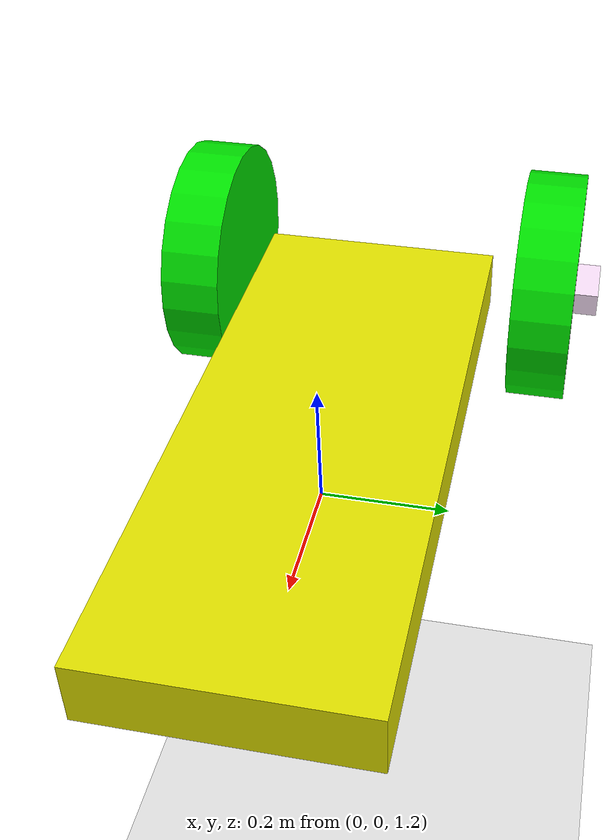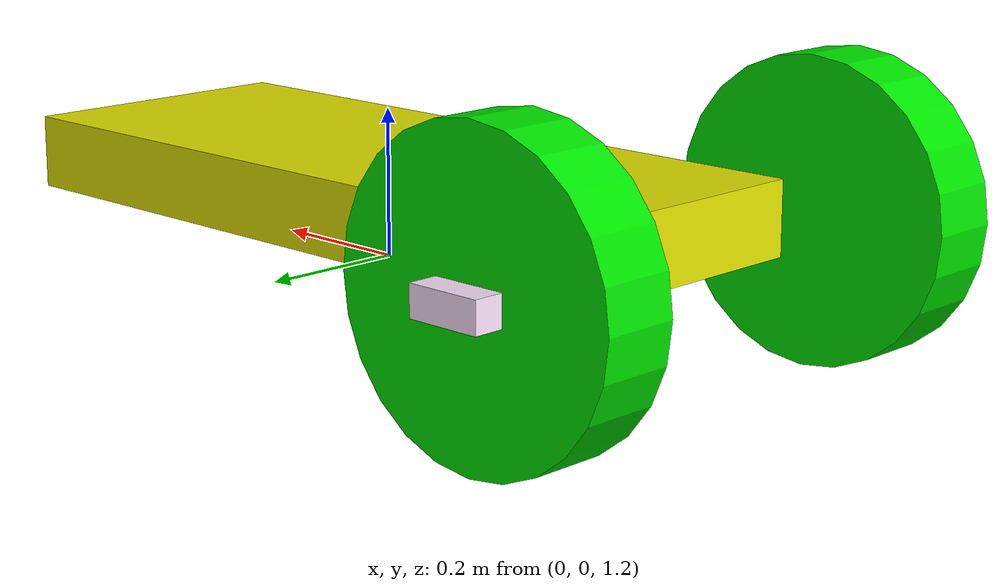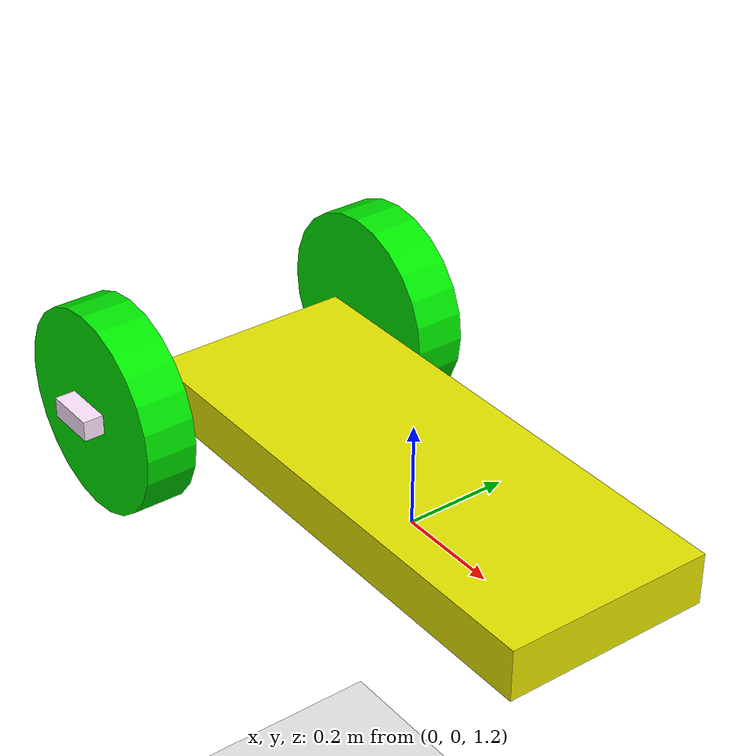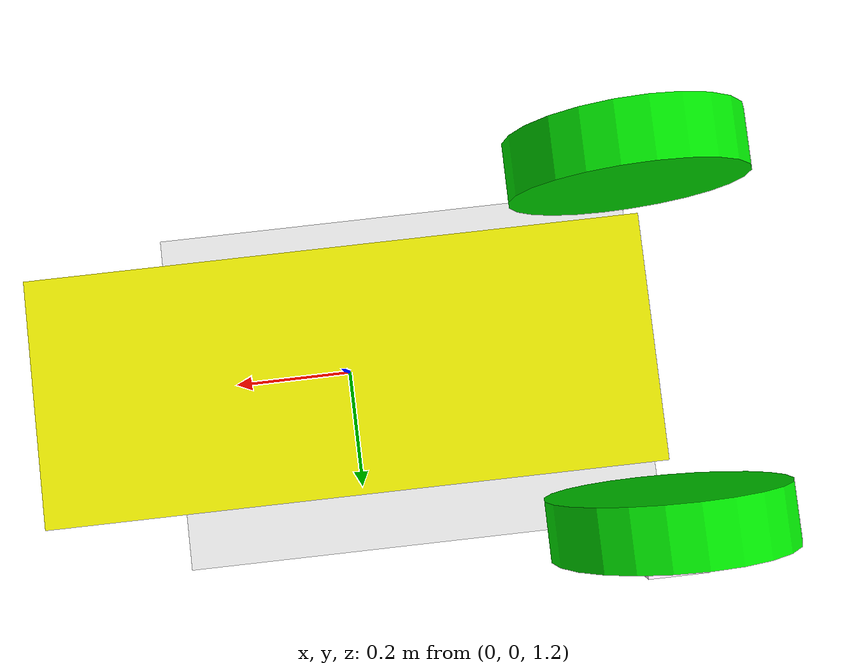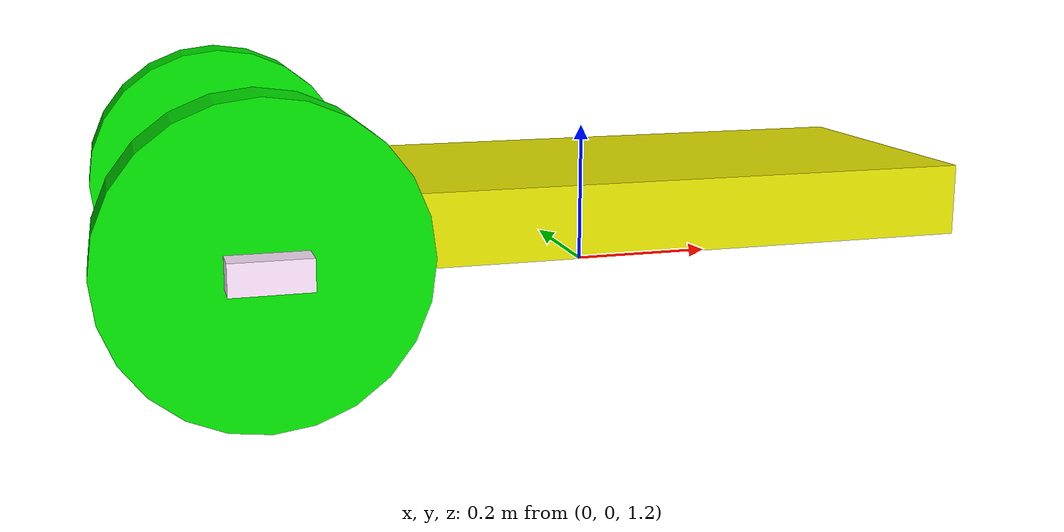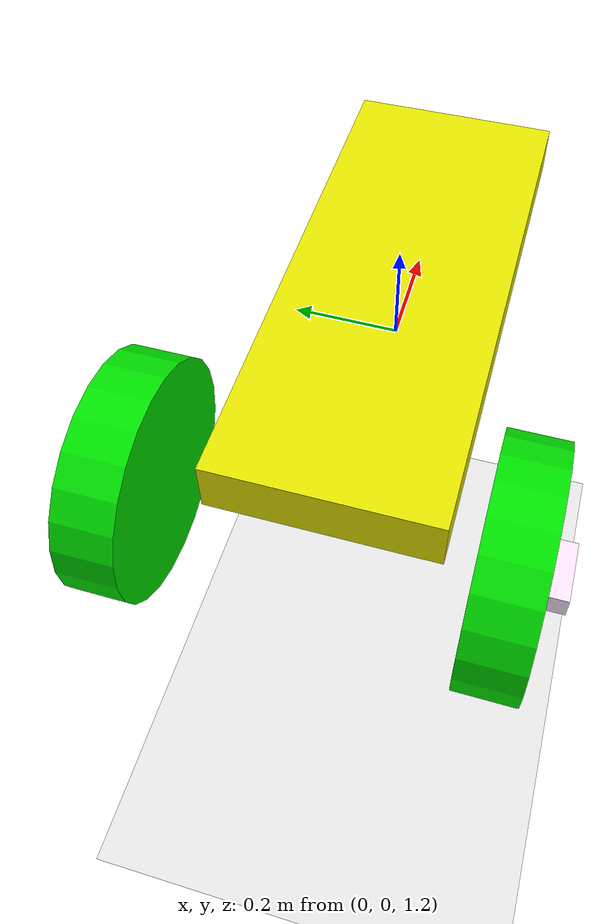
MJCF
<mujoco>
	<option gravity="0 0 -9.81" />
	<worldbody>
        <light diffuse=".5 .5 .5" pos="0 0 3" dir="0 0 -1"/>
		<geom type="plane" size="5 5 0.1" rgba=".9 .9 .9 1"/>
		<body name = "chassis" pos="0 0 1.3" euler='0 90 0'>
			<joint type="free"/>
			<geom type="box" size=".05 .2 .5" rgba=".9 .9 0 1"/>
			<body name="left-tire" pos="0 0.3 -0.5" euler='90 0 0'>
				<site name="torq0" pos="0 0 0" size="0.0001" rgba="0 0 0 1"/>
				<joint name = "left-wheel" type="hinge" axis="0 0 -1"/>
				<geom type="cylinder" size=".2 0.05" rgba="0 .9 0 1"/>
				<geom type="box" size=".02 0.05 0.05" pos="0 -0 -0.04" rgba="1 .9 1 1"/>
			</body>
			<body name="right-tire" pos="0 -0.3 -0.5" euler='90 0 0'>
				<joint name = "right-wheel" type="hinge" axis="0 0 -1"/>
				<geom type="cylinder" size=".2 0.05" rgba="0 .9 0 1"/>
				<geom type="box" size=".02 0.05 0.05" pos="0 -0 0.04" rgba="1 .9 1 1"/>
			</body>
		</body>
	</worldbody>
	<sensor>
<torque name="torqu0" site="torq0" />
	</sensor>
	<actuator>
	     <motor name="torque" joint="left-wheel"  gear="1" ctrllimited="true" ctrlrange="-100 100" forcelimited = "true" forcerange = "-200 200"/>
		<motor name="torque2" joint="left-wheel"  gear="1" ctrllimited="true" ctrlrange="-100 100" forcelimited = "true" forcerange = "-200 200"/>
	</actuator>
</mujoco>
